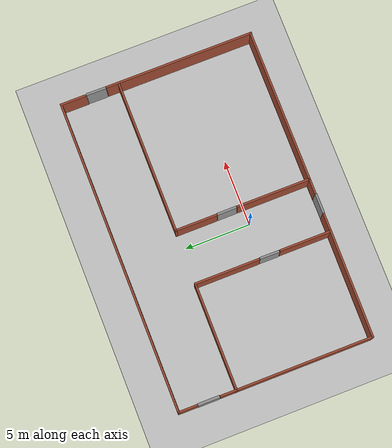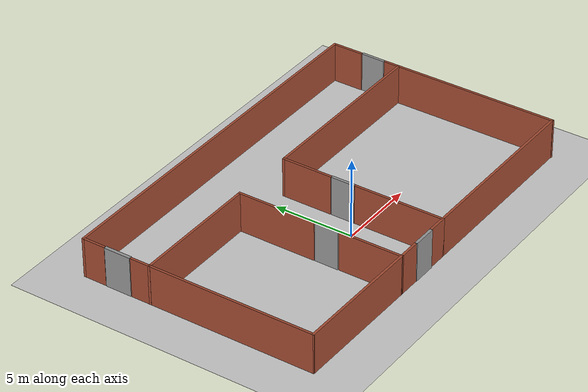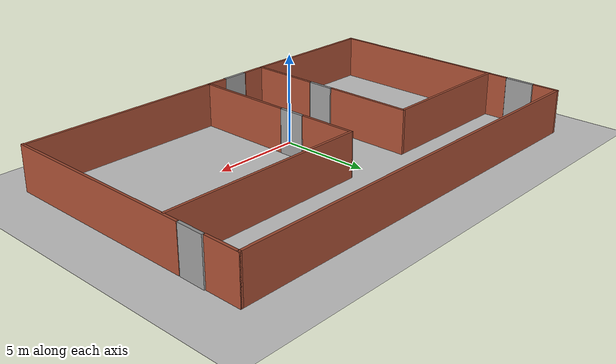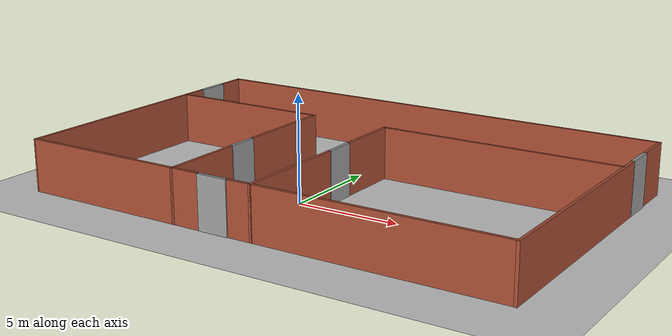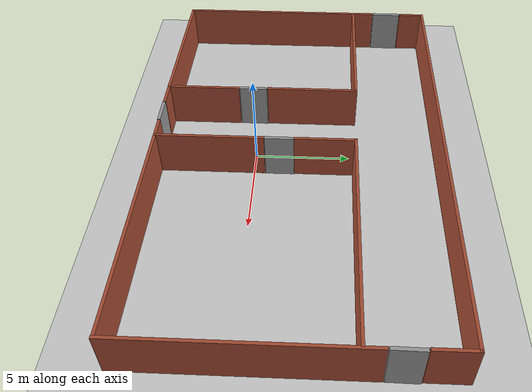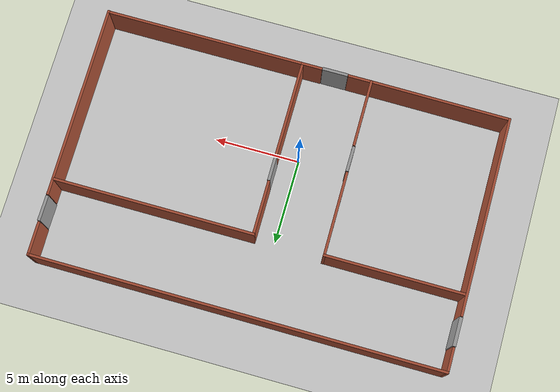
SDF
<sdf version="1.6">
 <world name="default">
  <light name="sun" type="directional">
   <pose>0 0 10 0 -0 0</pose>
   <diffuse>0.8 0.8 0.8 1</diffuse>
   <specular>0.1 0.1 0.1 1</specular>
   <attenuation>
    <range>1000</range>
    <constant>0.9</constant>
    <linear>0.01</linear>
    <quadratic>0.001</quadratic>
   </attenuation>
   <direction>-0.5 0.5 -1</direction>
  </light>
  <model name="ground_plane">
   <static>1</static>
   <link name="link">
    <collision name="collision">
     <geometry><plane><normal>0 0 1</normal><size>100 100</size></plane></geometry>
     <surface><friction><ode><mu>100</mu><mu2>50</mu2></ode></friction></surface>
    </collision>
    <visual name="visual">
     <cast_shadows>0</cast_shadows>
     <geometry><plane><normal>0 0 1</normal><size>100 100</size></plane></geometry>
     <material>
      <script><uri>file://media/materials/scripts/gazebo.material</uri><name>Gazebo/Grey</name></script>
     </material>
    </visual>
   </link>
  </model>
  <gravity>0 0 -9.8</gravity>
  <magnetic_field>6e-06 2.3e-05 -4.2e-05</magnetic_field>
  <atmosphere type="adiabatic"/>
  <physics name="default_physics" default="0" type="ode">
   <max_step_size>0.001</max_step_size>
   <real_time_factor>1</real_time_factor>
   <real_time_update_rate>1000</real_time_update_rate>
  </physics>
  <scene><ambient>0.4 0.4 0.4 1</ambient><background>0.7 0.7 0.7 1</background><shadows>1</shadows></scene>
  <spherical_coordinates>
   <surface_model>EARTH_WGS84</surface_model>
   <latitude_deg>0</latitude_deg>
   <longitude_deg>0</longitude_deg>
   <elevation>0</elevation>
   <heading_deg>0</heading_deg>
  </spherical_coordinates>
  <model name="bighouse">
   <pose>0.929459 2.32643 0 0 -0 0</pose>
   <link name="Door_0">
    <collision name="Door_0_Collision">
     <geometry><box><size>1.5 0.17 2.5</size></box></geometry>
     <pose>0 0 1.25 0 -0 0</pose>
    </collision>
    <visual name="Door_0_Visual">
     <pose>0 0 1.25 0 -0 0</pose>
     <geometry><box><size>1.5 0.17 2.5</size></box></geometry>
     <material>
      <script><uri>file://media/materials/scripts/gazebo.material</uri><name>Gazebo/Grey</name></script>
     </material>
    </visual>
    <pose>0.268571 -0.990041 0 0 -0 1.57183</pose>
   </link>
   <link name="Door_1">
    <collision name="Door_1_Collision">
     <geometry><box><size>1.5 0.17 2.5</size></box></geometry>
     <pose>0 0 1.25 0 -0 0</pose>
    </collision>
    <visual name="Door_1_Visual">
     <pose>0 0 1.25 0 -0 0</pose>
     <geometry><box><size>1.5 0.17 2.5</size></box></geometry>
     <material>
      <script><uri>file://media/materials/scripts/gazebo.material</uri><name>Gazebo/Grey</name></script>
     </material>
    </visual>
    <pose>-3.82566 -2.68566 0 0 0 -1.58003</pose>
   </link>
   <link name="Door_2">
    <collision name="Door_2_Collision">
     <geometry><box><size>1.65926 0.2 2.5</size></box></geometry>
     <pose>0 0 1.25 0 -0 0</pose>
    </collision>
    <visual name="Door_2_Visual">
     <pose>0 0 1.25 0 -0 0</pose>
     <geometry><box><size>1.65926 0.2 2.5</size></box></geometry>
     <material>
      <script><uri>file://media/materials/scripts/gazebo.material</uri><name>Gazebo/Grey</name></script>
     </material>
    </visual>
    <pose>-11.9289 5.12829 0 0 -0 1.57054</pose>
   </link>
   <link name="Door_3">
    <collision name="Door_3_Collision">
     <geometry><box><size>1.5 0.17 2.5</size></box></geometry>
     <pose>0 0 1.25 0 -0 0</pose>
    </collision>
    <visual name="Door_3_Visual">
     <pose>0 0 1.25 0 -0 0</pose>
     <geometry><box><size>1.5 0.17 2.5</size></box></geometry>
     <material>
      <script><uri>file://media/materials/scripts/gazebo.material</uri><name>Gazebo/Grey</name></script>
     </material>
    </visual>
    <pose>11.9456 4.69801 0 0 0 -1.58392</pose>
   </link>
   <link name="Door_4">
    <collision name="Door_4_Collision">
     <geometry><box><size>1.5 0.17 2.5</size></box></geometry>
     <pose>0 0 1.25 0 -0 0</pose>
    </collision>
    <visual name="Door_4_Visual">
     <pose>0 0 1.25 0 -0 0</pose>
     <geometry><box><size>1.5 0.17 2.5</size></box></geometry>
     <material>
      <script><uri>file://media/materials/scripts/gazebo.material</uri><name>Gazebo/Grey</name></script>
     </material>
    </visual>
    <pose>-1.66846 -7.42296 0 0 -0 0</pose>
   </link>
   <link name="Wall_16">
    <collision name="Wall_16_Collision">
     <geometry><box><size>11.75 0.15 2.5</size></box></geometry>
     <pose>0 0 1.25 0 -0 0</pose>
    </collision>
    <visual name="Wall_16_Visual">
     <pose>0 0 1.25 0 -0 0</pose>
     <geometry><box><size>11.75 0.15 2.5</size></box></geometry>
     <material>
      <script><uri>file://media/materials/scripts/gazebo.material</uri><name>Gazebo/Bricks</name></script>
      <ambient>1 1 1 1</ambient>
     </material>
    </visual>
    <pose>6.04989 2.9476 0 0 -0 0</pose>
   </link>
   <link name="Wall_18">
    <collision name="Wall_18_Collision">
     <geometry><box><size>8.25 0.15 2.5</size></box></geometry>
     <pose>0 0 1.25 0 -0 0</pose>
    </collision>
    <visual name="Wall_18_Visual">
     <pose>0 0 1.25 0 -0 0</pose>
     <geometry><box><size>8.25 0.15 2.5</size></box></geometry>
     <material>
      <script><uri>file://media/materials/scripts/gazebo.material</uri><name>Gazebo/Bricks</name></script>
      <ambient>1 1 1 1</ambient>
     </material>
    </visual>
    <pose>-7.89654 3.0274 0 0 -0 3.14159</pose>
   </link>
   <link name="Wall_20">
    <collision name="Wall_20_Collision">
     <geometry><box><size>5 0.15 2.5</size></box></geometry>
     <pose>0 0 1.25 0 -0 0</pose>
    </collision>
    <visual name="Wall_20_Visual">
     <pose>0 0 1.25 0 -0 0</pose>
     <geometry><box><size>5 0.15 2.5</size></box></geometry>
     <material>
      <script><uri>file://media/materials/scripts/gazebo.material</uri><name>Gazebo/Bricks</name></script>
      <ambient>1 1 1 1</ambient>
     </material>
    </visual>
    <pose>-3.84654 0.6024 0 0 0 -1.5708</pose>
   </link>
   <link name="Wall_22">
    <collision name="Wall_22_Collision">
     <geometry><box><size>4 0.15 2.5</size></box></geometry>
     <pose>0 0 1.25 0 -0 0</pose>
    </collision>
    <visual name="Wall_22_Visual">
     <pose>0 0 1.25 0 -0 0</pose>
     <geometry><box><size>4 0.15 2.5</size></box></geometry>
     <material>
      <script><uri>file://media/materials/scripts/gazebo.material</uri><name>Gazebo/Bricks</name></script>
      <ambient>1 1 1 1</ambient>
     </material>
    </visual>
    <pose>-3.81503 -5.48261 0 0 -0 1.5708</pose>
   </link>
   <link name="Wall_24">
    <collision name="Wall_24_Collision">
     <geometry><box><size>3.25 0.15 2.5</size></box></geometry>
     <pose>0 0 1.25 0 -0 0</pose>
    </collision>
    <visual name="Wall_24_Visual">
     <pose>0 0 1.25 0 -0 0</pose>
     <geometry><box><size>3.25 0.15 2.5</size></box></geometry>
     <material>
      <script><uri>file://media/materials/scripts/gazebo.material</uri><name>Gazebo/Bricks</name></script>
      <ambient>1 1 1 1</ambient>
     </material>
    </visual>
    <pose>0.249889 1.3976 0 0 0 -1.5708</pose>
   </link>
   <link name="Wall_28">
    <collision name="Wall_28_Collision">
     <geometry><box><size>5.7 0.15 2.5</size></box></geometry>
     <pose>0 0 1.25 0 -0 0</pose>
    </collision>
    <visual name="Wall_28_Visual">
     <pose>0 0 1.25 0 -0 0</pose>
     <geometry><box><size>5.7 0.15 2.5</size></box></geometry>
     <material>
      <script><uri>file://media/materials/scripts/gazebo.material</uri><name>Gazebo/Bricks</name></script>
      <ambient>1 1 1 1</ambient>
     </material>
    </visual>
    <pose>0.268897 -4.62151 0 0 0 -1.5708</pose>
   </link>
   <link name="Wall_30">
    <collision name="Wall_30_Collision">
     <geometry><box><size>1.5 0.15 2.5</size></box></geometry>
     <pose>0 0 1.25 0 -0 0</pose>
    </collision>
    <visual name="Wall_30_Visual">
     <pose>0 0 1.25 0 -0 0</pose>
     <geometry><box><size>1.5 0.15 2.5</size></box></geometry>
     <material>
      <script><uri>file://media/materials/scripts/gazebo.material</uri><name>Gazebo/Bricks</name></script>
      <ambient>1 1 1 1</ambient>
     </material>
    </visual>
    <pose>-11.933 6.74143 0 0 0 -1.5708</pose>
   </link>
   <link name="Wall_34">
    <collision name="Wall_34_Collision">
     <geometry><box><size>11.7 0.15 2.5</size></box></geometry>
     <pose>0 0 1.25 0 -0 0</pose>
    </collision>
    <visual name="Wall_34_Visual">
     <pose>0 0 1.25 0 -0 0</pose>
     <geometry><box><size>11.7 0.15 2.5</size></box></geometry>
     <material>
      <script><uri>file://media/materials/scripts/gazebo.material</uri><name>Gazebo/Bricks</name></script>
      <ambient>1 1 1 1</ambient>
     </material>
    </visual>
    <pose>-11.9427 -1.58164 0 0 0 -1.5708</pose>
   </link>
   <link name="Wall_36">
    <collision name="Wall_36_Collision">
     <geometry><box><size>2 0.15 2.5</size></box></geometry>
     <pose>0 0 1.25 0 -0 0</pose>
    </collision>
    <visual name="Wall_36_Visual">
     <pose>0 0 1.25 0 -0 0</pose>
     <geometry><box><size>2 0.15 2.5</size></box></geometry>
     <material>
      <script><uri>file://media/materials/scripts/gazebo.material</uri><name>Gazebo/Bricks</name></script>
      <ambient>1 1 1 1</ambient>
     </material>
    </visual>
    <pose>11.917 6.49143 0 0 0 -1.5708</pose>
   </link>
   <link name="Wall_38">
    <collision name="Wall_38_Collision">
     <geometry><box><size>11.4 0.15 2.5</size></box></geometry>
     <pose>0 0 1.25 0 -0 0</pose>
    </collision>
    <visual name="Wall_38_Visual">
     <pose>0 0 1.25 0 -0 0</pose>
     <geometry><box><size>11.4 0.15 2.5</size></box></geometry>
     <material>
      <script><uri>file://media/materials/scripts/gazebo.material</uri><name>Gazebo/Bricks</name></script>
      <ambient>1 1 1 1</ambient>
     </material>
    </visual>
    <pose>11.9465 -1.79143 0 0 0 -1.5708</pose>
   </link>
   <link name="Wall_43">
    <collision name="Wall_43_Collision">
     <geometry><box><size>1.45 0.15 2.5</size></box></geometry>
     <pose>0 0 1.25 0 -0 0</pose>
    </collision>
    <visual name="Wall_43_Visual">
     <pose>0 0 1.25 0 -0 0</pose>
     <geometry><box><size>1.45 0.15 2.5</size></box></geometry>
     <material>
      <script><uri>file://media/materials/scripts/gazebo.material</uri><name>Gazebo/Bricks</name></script>
      <ambient>1 1 1 1</ambient>
     </material>
    </visual>
    <pose>-3.16503 -7.40761 0 0 -0 0</pose>
   </link>
   <link name="Wall_45">
    <collision name="Wall_45_Collision">
     <geometry><box><size>1.25 0.15 2.5</size></box></geometry>
     <pose>0 0 1.25 0 -0 0</pose>
    </collision>
    <visual name="Wall_45_Visual">
     <pose>0 0 1.25 0 -0 0</pose>
     <geometry><box><size>1.25 0.15 2.5</size></box></geometry>
     <material>
      <script><uri>file://media/materials/scripts/gazebo.material</uri><name>Gazebo/Bricks</name></script>
      <ambient>1 1 1 1</ambient>
     </material>
    </visual>
    <pose>-0.281103 -7.39651 0 0 -0 3.14159</pose>
   </link>
   <link name="Wall_47">
    <collision name="Wall_47_Collision">
     <geometry><box><size>8.27779 0.15 2.5</size></box></geometry>
     <pose>0 0 1.25 0 -0 0</pose>
    </collision>
    <visual name="Wall_47_Visual">
     <pose>0 0 1.25 0 -0 0</pose>
     <geometry><box><size>8.27779 0.15 2.5</size></box></geometry>
     <material>
      <script><uri>file://media/materials/scripts/gazebo.material</uri><name>Gazebo/Bricks</name></script>
      <ambient>1 1 1 1</ambient>
     </material>
    </visual>
    <pose>-7.87885 -7.38213 0 0 0 -0.00627</pose>
   </link>
   <link name="Wall_49">
    <collision name="Wall_49_Collision">
     <geometry><box><size>11.75 0.15 2.5</size></box></geometry>
     <pose>0 0 1.25 0 -0 0</pose>
    </collision>
    <visual name="Wall_49_Visual">
     <pose>0 0 1.25 0 -0 0</pose>
     <geometry><box><size>11.75 0.15 2.5</size></box></geometry>
     <material>
      <script><uri>file://media/materials/scripts/gazebo.material</uri><name>Gazebo/Bricks</name></script>
      <ambient>1 1 1 1</ambient>
     </material>
    </visual>
    <pose>6.0689 -7.39651 0 0 -0 0</pose>
   </link>
   <link name="Wall_6">
    <collision name="Wall_6_Collision">
     <geometry><box><size>24 0.15 2.5</size></box></geometry>
     <pose>0 0 1.25 0 -0 0</pose>
    </collision>
    <visual name="Wall_6_Visual">
     <pose>0 0 1.25 0 -0 0</pose>
     <geometry><box><size>24 0.15 2.5</size></box></geometry>
     <material>
      <script><uri>file://media/materials/scripts/gazebo.material</uri><name>Gazebo/Bricks</name></script>
      <ambient>1 1 1 1</ambient>
     </material>
    </visual>
    <pose>-0.008002 7.41643 0 0 -0 0</pose>
   </link>
   <static>1</static>
  </model>
  <plugin name="collision_map_creator" filename="libcollision_map_creator.so"/>
 </world>
</sdf>
